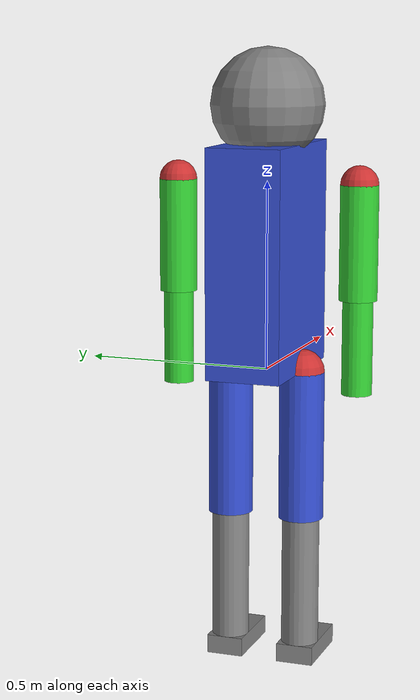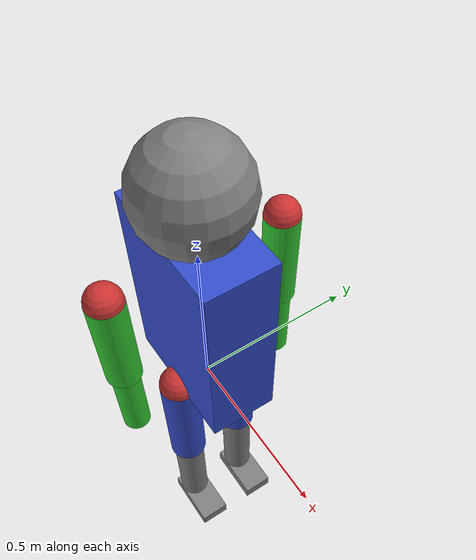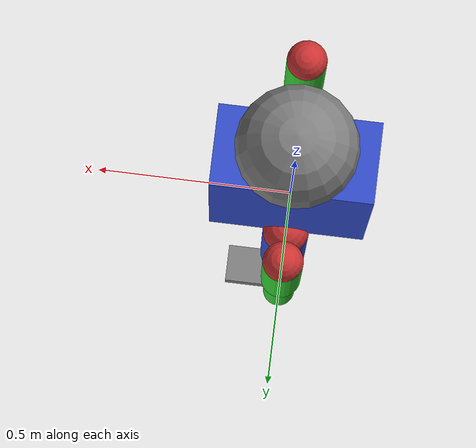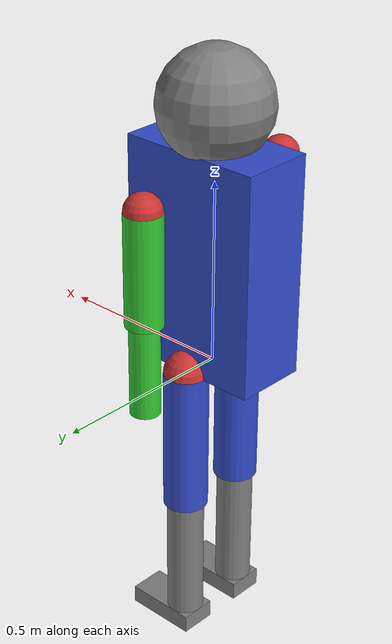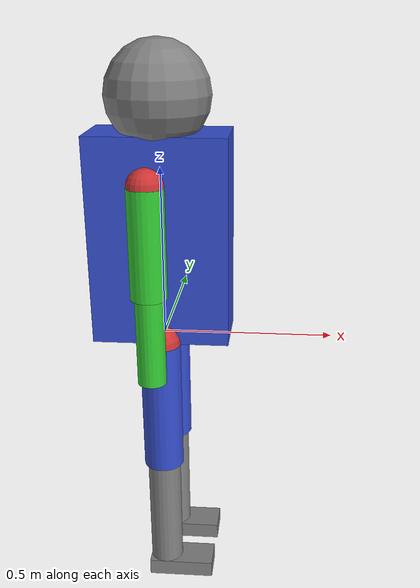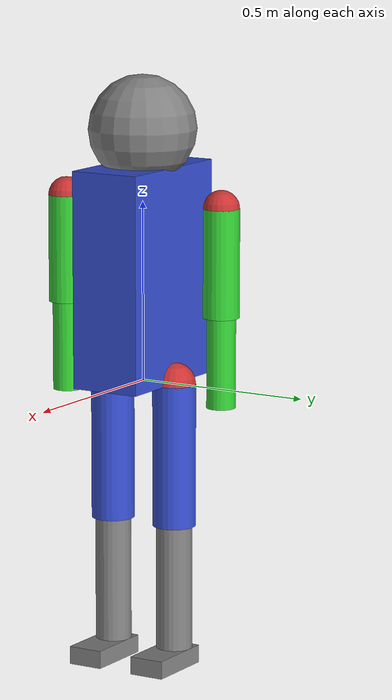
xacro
<?xml version="1.0"?>
<robot name="humanoid_robot" xmlns:xacro="http://www.ros.org/wiki/xacro">

  <!-- MATERIAL DEFINITIONS (for visualization)      -->

  <material name="blue">
    <color rgba="0.2 0.3 0.8 1.0"/>
  </material>

  <material name="grey">
    <color rgba="0.5 0.5 0.5 1.0"/>
  </material>

  <material name="red">
    <color rgba="0.8 0.2 0.2 1.0"/>
  </material>

  <material name="green">
    <color rgba="0.2 0.8 0.2 1.0"/>
  </material>

  <!-- BASE LINK (Root of kinematic tree)            -->

  <link name="base_link">
    <!-- Placeholder for connection to world (e.g., via fixed joint for standing pose) -->
    <!-- In real robot: this would be pelvis/hip center -->
  </link>

  <!-- TORSO (Main body, all other links connect here) -->

  <link name="torso">
    <visual>
      <geometry>
        <!-- Torso: 0.4m wide, 0.2m deep, 0.6m tall -->
        <box size="0.4 0.2 0.6"/>
      </geometry>
      <origin xyz="0 0 0.3" rpy="0 0 0"/>  <!-- Center at half height -->
      <material name="blue"/>
    </visual>

    <collision>
      <!-- Use same geometry for simplicity (box is already simple) -->
      <geometry>
        <box size="0.4 0.2 0.6"/>
      </geometry>
      <origin xyz="0 0 0.3" rpy="0 0 0"/>
    </collision>

    <inertial>
      <!-- Torso mass: 15 kg (typical for humanoid upper body) -->
      <mass value="15.0"/>
      <!-- Inertia for box: I = (1/12) * m * (h^2 + d^2) for each axis -->
      <!-- ixx (rotation about X): (1/12) * 15 * (0.6^2 + 0.2^2) = 0.55 -->
      <!-- iyy (rotation about Y): (1/12) * 15 * (0.6^2 + 0.4^2) = 0.65 -->
      <!-- izz (rotation about Z): (1/12) * 15 * (0.4^2 + 0.2^2) = 0.30 -->
      <inertia ixx="0.55" ixy="0.0" ixz="0.0"
               iyy="0.65" iyz="0.0" izz="0.30"/>
      <origin xyz="0 0 0.3" rpy="0 0 0"/>  <!-- Center of mass at torso center -->
    </inertial>
  </link>

  <joint name="base_to_torso" type="fixed">
    <!-- Fixed joint: torso is rigidly attached to base_link -->
    <parent link="base_link"/>
    <child link="torso"/>
    <origin xyz="0 0 0" rpy="0 0 0"/>
  </joint>

  <!-- HEAD (for sensor mounting)                    -->

  <link name="head">
    <visual>
      <geometry>
        <!-- Head: 0.15m diameter sphere -->
        <sphere radius="0.15"/>
      </geometry>
      <origin xyz="0 0 0" rpy="0 0 0"/>
      <material name="grey"/>
    </visual>

    <collision>
      <geometry>
        <sphere radius="0.15"/>
      </geometry>
      <origin xyz="0 0 0" rpy="0 0 0"/>
    </collision>

    <inertial>
      <!-- Head mass: 3 kg -->
      <mass value="3.0"/>
      <!-- Inertia for sphere: I = (2/5) * m * r^2 -->
      <inertia ixx="0.027" ixy="0.0" ixz="0.0"
               iyy="0.027" iyz="0.0" izz="0.027"/>
      <origin xyz="0 0 0" rpy="0 0 0"/>
    </inertial>
  </link>

  <joint name="neck_pitch" type="revolute">
    <!-- Neck pitch: Look up/down -->
    <parent link="torso"/>
    <child link="head"/>
    <origin xyz="0 0 0.7" rpy="0 0 0"/>  <!-- Head mounted 0.7m above base (top of torso + 0.1m) -->
    <axis xyz="0 1 0"/>  <!-- Pitch axis (Y) -->
    <limit lower="-0.785" upper="0.785" effort="10.0" velocity="1.0"/>
  </joint>

  <!-- LEFT ARM                                      -->

  <link name="left_shoulder">
    <visual>
      <geometry>
        <!-- Shoulder joint: small sphere -->
        <sphere radius="0.05"/>
      </geometry>
      <origin xyz="0 0 0" rpy="0 0 0"/>
      <material name="red"/>
    </visual>

    <collision>
      <geometry>
        <sphere radius="0.05"/>
      </geometry>
      <origin xyz="0 0 0" rpy="0 0 0"/>
    </collision>

    <inertial>
      <mass value="0.5"/>
      <inertia ixx="0.001" ixy="0.0" ixz="0.0"
               iyy="0.001" iyz="0.0" izz="0.001"/>
      <origin xyz="0 0 0" rpy="0 0 0"/>
    </inertial>
  </link>

  <joint name="left_shoulder_pitch" type="revolute">
    <!-- Shoulder pitch: Raise/lower arm -->
    <parent link="torso"/>
    <child link="left_shoulder"/>
    <origin xyz="0 0.25 0.5" rpy="0 0 0"/>  <!-- Mounted on left side of torso -->
    <axis xyz="0 1 0"/>  <!-- Pitch axis (Y) -->
    <limit lower="-3.14" upper="3.14" effort="20.0" velocity="2.0"/>  <!-- ±180° full range -->
  </joint>

  <link name="left_upper_arm">
    <visual>
      <geometry>
        <!-- Upper arm: 0.05m radius, 0.3m long cylinder -->
        <cylinder radius="0.05" length="0.3"/>
      </geometry>
      <origin xyz="0 0 -0.15" rpy="0 0 0"/>  <!-- Extend downward -->
      <material name="green"/>
    </visual>

    <collision>
      <geometry>
        <cylinder radius="0.05" length="0.3"/>
      </geometry>
      <origin xyz="0 0 -0.15" rpy="0 0 0"/>
    </collision>

    <inertial>
      <mass value="1.5"/>
      <!-- Inertia for cylinder along Z: I = (1/12) * m * (3*r^2 + h^2) -->
      <inertia ixx="0.012" ixy="0.0" ixz="0.0"
               iyy="0.012" iyz="0.0" izz="0.002"/>
      <origin xyz="0 0 -0.15" rpy="0 0 0"/>
    </inertial>
  </link>

  <joint name="left_shoulder_roll" type="revolute">
    <!-- Shoulder roll: Rotate arm inward/outward -->
    <parent link="left_shoulder"/>
    <child link="left_upper_arm"/>
    <origin xyz="0 0 0" rpy="0 0 0"/>
    <axis xyz="1 0 0"/>  <!-- Roll axis (X) -->
    <limit lower="-1.57" upper="1.57" effort="15.0" velocity="1.5"/>
  </joint>

  <link name="left_lower_arm">
    <visual>
      <geometry>
        <!-- Lower arm (forearm): 0.04m radius, 0.25m long -->
        <cylinder radius="0.04" length="0.25"/>
      </geometry>
      <origin xyz="0 0 -0.125" rpy="0 0 0"/>
      <material name="green"/>
    </visual>

    <collision>
      <geometry>
        <cylinder radius="0.04" length="0.25"/>
      </geometry>
      <origin xyz="0 0 -0.125" rpy="0 0 0"/>
    </collision>

    <inertial>
      <mass value="1.0"/>
      <inertia ixx="0.006" ixy="0.0" ixz="0.0"
               iyy="0.006" iyz="0.0" izz="0.001"/>
      <origin xyz="0 0 -0.125" rpy="0 0 0"/>
    </inertial>
  </link>

  <joint name="left_elbow" type="revolute">
    <!-- Elbow: Bend arm -->
    <parent link="left_upper_arm"/>
    <child link="left_lower_arm"/>
    <origin xyz="0 0 -0.3" rpy="0 0 0"/>  <!-- Connect at end of upper arm -->
    <axis xyz="0 1 0"/>  <!-- Pitch axis (Y) -->
    <limit lower="0.0" upper="2.356" effort="10.0" velocity="1.5"/>  <!-- 0° to 135° (can't bend backward) -->
  </joint>

  <!-- RIGHT ARM (mirror of left arm)                -->

  <link name="right_shoulder">
    <visual>
      <geometry>
        <sphere radius="0.05"/>
      </geometry>
      <origin xyz="0 0 0" rpy="0 0 0"/>
      <material name="red"/>
    </visual>

    <collision>
      <geometry>
        <sphere radius="0.05"/>
      </geometry>
      <origin xyz="0 0 0" rpy="0 0 0"/>
    </collision>

    <inertial>
      <mass value="0.5"/>
      <inertia ixx="0.001" ixy="0.0" ixz="0.0"
               iyy="0.001" iyz="0.0" izz="0.001"/>
      <origin xyz="0 0 0" rpy="0 0 0"/>
    </inertial>
  </link>

  <joint name="right_shoulder_pitch" type="revolute">
    <parent link="torso"/>
    <child link="right_shoulder"/>
    <origin xyz="0 -0.25 0.5" rpy="0 0 0"/>  <!-- Right side (negative Y) -->
    <axis xyz="0 1 0"/>
    <limit lower="-3.14" upper="3.14" effort="20.0" velocity="2.0"/>
  </joint>

  <link name="right_upper_arm">
    <visual>
      <geometry>
        <cylinder radius="0.05" length="0.3"/>
      </geometry>
      <origin xyz="0 0 -0.15" rpy="0 0 0"/>
      <material name="green"/>
    </visual>

    <collision>
      <geometry>
        <cylinder radius="0.05" length="0.3"/>
      </geometry>
      <origin xyz="0 0 -0.15" rpy="0 0 0"/>
    </collision>

    <inertial>
      <mass value="1.5"/>
      <inertia ixx="0.012" ixy="0.0" ixz="0.0"
               iyy="0.012" iyz="0.0" izz="0.002"/>
      <origin xyz="0 0 -0.15" rpy="0 0 0"/>
    </inertial>
  </link>

  <joint name="right_shoulder_roll" type="revolute">
    <parent link="right_shoulder"/>
    <child link="right_upper_arm"/>
    <origin xyz="0 0 0" rpy="0 0 0"/>
    <axis xyz="1 0 0"/>
    <limit lower="-1.57" upper="1.57" effort="15.0" velocity="1.5"/>
  </joint>

  <link name="right_lower_arm">
    <visual>
      <geometry>
        <cylinder radius="0.04" length="0.25"/>
      </geometry>
      <origin xyz="0 0 -0.125" rpy="0 0 0"/>
      <material name="green"/>
    </visual>

    <collision>
      <geometry>
        <cylinder radius="0.04" length="0.25"/>
      </geometry>
      <origin xyz="0 0 -0.125" rpy="0 0 0"/>
    </collision>

    <inertial>
      <mass value="1.0"/>
      <inertia ixx="0.006" ixy="0.0" ixz="0.0"
               iyy="0.006" iyz="0.0" izz="0.001"/>
      <origin xyz="0 0 -0.125" rpy="0 0 0"/>
    </inertial>
  </link>

  <joint name="right_elbow" type="revolute">
    <parent link="right_upper_arm"/>
    <child link="right_lower_arm"/>
    <origin xyz="0 0 -0.3" rpy="0 0 0"/>
    <axis xyz="0 1 0"/>
    <limit lower="0.0" upper="2.356" effort="10.0" velocity="1.5"/>
  </joint>

  <!-- LEFT LEG                                      -->

  <link name="left_hip">
    <visual>
      <geometry>
        <sphere radius="0.06"/>
      </geometry>
      <origin xyz="0 0 0" rpy="0 0 0"/>
      <material name="red"/>
    </visual>

    <collision>
      <geometry>
        <sphere radius="0.06"/>
      </geometry>
      <origin xyz="0 0 0" rpy="0 0 0"/>
    </collision>

    <inertial>
      <mass value="1.0"/>
      <inertia ixx="0.002" ixy="0.0" ixz="0.0"
               iyy="0.002" iyz="0.0" izz="0.002"/>
      <origin xyz="0 0 0" rpy="0 0 0"/>
    </inertial>
  </link>

  <joint name="left_hip_pitch" type="revolute">
    <parent link="base_link"/>
    <child link="left_hip"/>
    <origin xyz="0 0.1 0" rpy="0 0 0"/>  <!-- Hips are 0.1m apart -->
    <axis xyz="0 1 0"/>
    <limit lower="-1.57" upper="1.57" effort="30.0" velocity="2.0"/>
  </joint>

  <link name="left_thigh">
    <visual>
      <geometry>
        <!-- Thigh: 0.06m radius, 0.4m long -->
        <cylinder radius="0.06" length="0.4"/>
      </geometry>
      <origin xyz="0 0 -0.2" rpy="0 0 0"/>
      <material name="blue"/>
    </visual>

    <collision>
      <geometry>
        <cylinder radius="0.06" length="0.4"/>
      </geometry>
      <origin xyz="0 0 -0.2" rpy="0 0 0"/>
    </collision>

    <inertial>
      <mass value="3.0"/>
      <inertia ixx="0.045" ixy="0.0" ixz="0.0"
               iyy="0.045" iyz="0.0" izz="0.005"/>
      <origin xyz="0 0 -0.2" rpy="0 0 0"/>
    </inertial>
  </link>

  <joint name="left_hip_roll" type="revolute">
    <parent link="left_hip"/>
    <child link="left_thigh"/>
    <origin xyz="0 0 0" rpy="0 0 0"/>
    <axis xyz="1 0 0"/>
    <limit lower="-0.785" upper="0.785" effort="25.0" velocity="1.5"/>
  </joint>

  <link name="left_shin">
    <visual>
      <geometry>
        <!-- Shin: 0.05m radius, 0.35m long -->
        <cylinder radius="0.05" length="0.35"/>
      </geometry>
      <origin xyz="0 0 -0.175" rpy="0 0 0"/>
      <material name="grey"/>
    </visual>

    <collision>
      <geometry>
        <cylinder radius="0.05" length="0.35"/>
      </geometry>
      <origin xyz="0 0 -0.175" rpy="0 0 0"/>
    </collision>

    <inertial>
      <mass value="2.0"/>
      <inertia ixx="0.022" ixy="0.0" ixz="0.0"
               iyy="0.022" iyz="0.0" izz="0.003"/>
      <origin xyz="0 0 -0.175" rpy="0 0 0"/>
    </inertial>
  </link>

  <joint name="left_knee" type="revolute">
    <parent link="left_thigh"/>
    <child link="left_shin"/>
    <origin xyz="0 0 -0.4" rpy="0 0 0"/>
    <axis xyz="0 1 0"/>
    <limit lower="-2.356" upper="0.0" effort="20.0" velocity="1.5"/>  <!-- 0° to -135° (knee bends backward) -->
  </joint>

  <link name="left_foot">
    <visual>
      <geometry>
        <!-- Foot: 0.2m long, 0.1m wide, 0.05m tall -->
        <box size="0.2 0.1 0.05"/>
      </geometry>
      <origin xyz="0.05 0 -0.025" rpy="0 0 0"/>  <!-- Foot extends forward -->
      <material name="grey"/>
    </visual>

    <collision>
      <geometry>
        <box size="0.2 0.1 0.05"/>
      </geometry>
      <origin xyz="0.05 0 -0.025" rpy="0 0 0"/>
    </collision>

    <inertial>
      <mass value="1.0"/>
      <inertia ixx="0.002" ixy="0.0" ixz="0.0"
               iyy="0.004" iyz="0.0" izz="0.005"/>
      <origin xyz="0.05 0 -0.025" rpy="0 0 0"/>
    </inertial>
  </link>

  <joint name="left_ankle" type="revolute">
    <parent link="left_shin"/>
    <child link="left_foot"/>
    <origin xyz="0 0 -0.35" rpy="0 0 0"/>
    <axis xyz="0 1 0"/>
    <limit lower="-0.785" upper="0.785" effort="15.0" velocity="1.0"/>
  </joint>

  <!-- RIGHT LEG (mirror of left leg)                -->

  <link name="right_hip">
    <visual>
      <geometry>
        <sphere radius="0.06"/>
      </geometry>
      <origin xyz="0 0 0" rpy="0 0 0"/>
      <material name="red"/>
    </visual>

    <collision>
      <geometry>
        <sphere radius="0.06"/>
      </geometry>
      <origin xyz="0 0 0" rpy="0 0 0"/>
    </collision>

    <inertial>
      <mass value="1.0"/>
      <inertia ixx="0.002" ixy="0.0" ixz="0.0"
               iyy="0.002" iyz="0.0" izz="0.002"/>
      <origin xyz="0 0 0" rpy="0 0 0"/>
    </inertial>
  </link>

  <joint name="right_hip_pitch" type="revolute">
    <parent link="base_link"/>
    <child link="right_hip"/>
    <origin xyz="0 -0.1 0" rpy="0 0 0"/>  <!-- Right side (negative Y) -->
    <axis xyz="0 1 0"/>
    <limit lower="-1.57" upper="1.57" effort="30.0" velocity="2.0"/>
  </joint>

  <link name="right_thigh">
    <visual>
      <geometry>
        <cylinder radius="0.06" length="0.4"/>
      </geometry>
      <origin xyz="0 0 -0.2" rpy="0 0 0"/>
      <material name="blue"/>
    </visual>

    <collision>
      <geometry>
        <cylinder radius="0.06" length="0.4"/>
      </geometry>
      <origin xyz="0 0 -0.2" rpy="0 0 0"/>
    </collision>

    <inertial>
      <mass value="3.0"/>
      <inertia ixx="0.045" ixy="0.0" ixz="0.0"
               iyy="0.045" iyz="0.0" izz="0.005"/>
      <origin xyz="0 0 -0.2" rpy="0 0 0"/>
    </inertial>
  </link>

  <joint name="right_hip_roll" type="revolute">
    <parent link="right_hip"/>
    <child link="right_thigh"/>
    <origin xyz="0 0 0" rpy="0 0 0"/>
    <axis xyz="1 0 0"/>
    <limit lower="-0.785" upper="0.785" effort="25.0" velocity="1.5"/>
  </joint>

  <link name="right_shin">
    <visual>
      <geometry>
        <cylinder radius="0.05" length="0.35"/>
      </geometry>
      <origin xyz="0 0 -0.175" rpy="0 0 0"/>
      <material name="grey"/>
    </visual>

    <collision>
      <geometry>
        <cylinder radius="0.05" length="0.35"/>
      </geometry>
      <origin xyz="0 0 -0.175" rpy="0 0 0"/>
    </collision>

    <inertial>
      <mass value="2.0"/>
      <inertia ixx="0.022" ixy="0.0" ixz="0.0"
               iyy="0.022" iyz="0.0" izz="0.003"/>
      <origin xyz="0 0 -0.175" rpy="0 0 0"/>
    </inertial>
  </link>

  <joint name="right_knee" type="revolute">
    <parent link="right_thigh"/>
    <child link="right_shin"/>
    <origin xyz="0 0 -0.4" rpy="0 0 0"/>
    <axis xyz="0 1 0"/>
    <limit lower="-2.356" upper="0.0" effort="20.0" velocity="1.5"/>
  </joint>

  <link name="right_foot">
    <visual>
      <geometry>
        <box size="0.2 0.1 0.05"/>
      </geometry>
      <origin xyz="0.05 0 -0.025" rpy="0 0 0"/>
      <material name="grey"/>
    </visual>

    <collision>
      <geometry>
        <box size="0.2 0.1 0.05"/>
      </geometry>
      <origin xyz="0.05 0 -0.025" rpy="0 0 0"/>
    </collision>

    <inertial>
      <mass value="1.0"/>
      <inertia ixx="0.002" ixy="0.0" ixz="0.0"
               iyy="0.004" iyz="0.0" izz="0.005"/>
      <origin xyz="0.05 0 -0.025" rpy="0 0 0"/>
    </inertial>
  </link>

  <joint name="right_ankle" type="revolute">
    <parent link="right_shin"/>
    <child link="right_foot"/>
    <origin xyz="0 0 -0.35" rpy="0 0 0"/>
    <axis xyz="0 1 0"/>
    <limit lower="-0.785" upper="0.785" effort="15.0" velocity="1.0"/>
  </joint>

  <!-- GAZEBO PHYSICS PROPERTIES                     -->

  <!-- Torso physics -->
  <gazebo reference="torso">
    <mu1>0.5</mu1>
    <mu2>0.5</mu2>
    <kp>1000000.0</kp>
    <kd>1.0</kd>
    <material>Gazebo/Blue</material>
  </gazebo>

  <!-- Foot physics (high friction for standing) -->
  <gazebo reference="left_foot">
    <mu1>1.0</mu1>
    <mu2>1.0</mu2>
    <kp>1000000.0</kp>
    <kd>1.0</kd>
    <material>Gazebo/Grey</material>
  </gazebo>

  <gazebo reference="right_foot">
    <mu1>1.0</mu1>
    <mu2>1.0</mu2>
    <kp>1000000.0</kp>
    <kd>1.0</kd>
    <material>Gazebo/Grey</material>
  </gazebo>

</robot>
